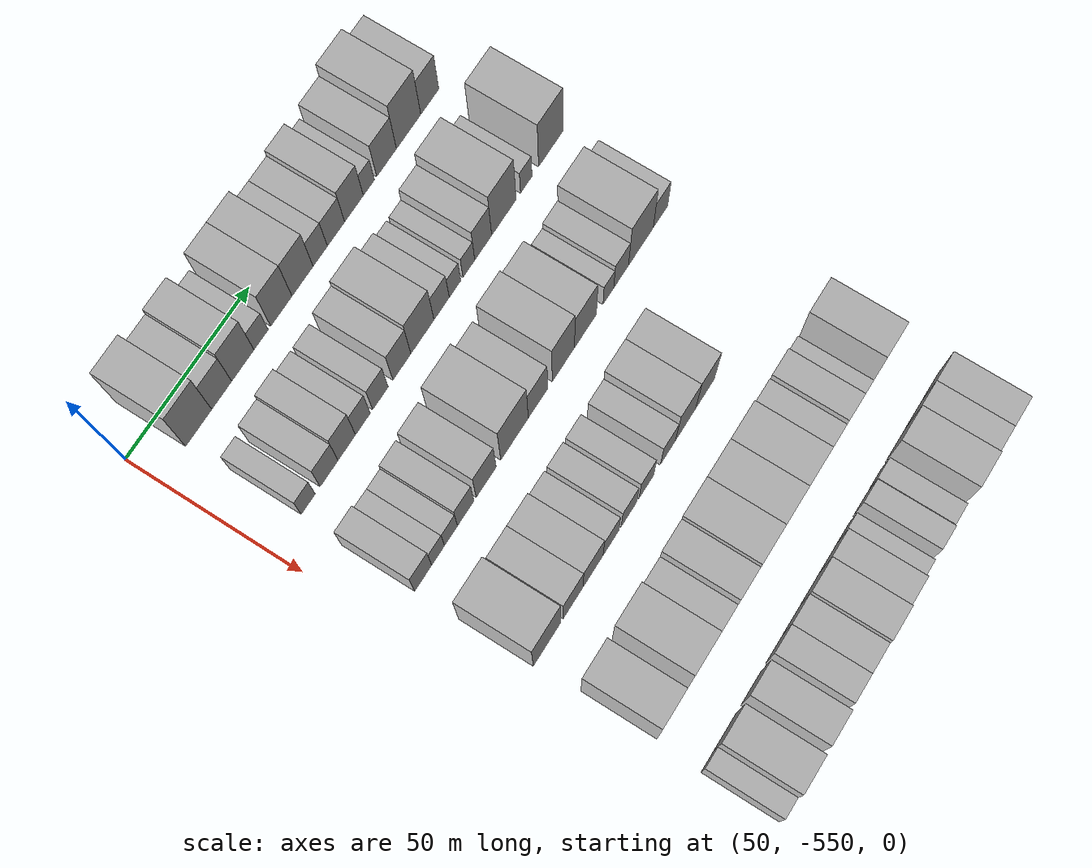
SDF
<sdf version="1.6">
 <world name="default">
  <model name="building_1">
   <static>1</static>
   <pose>50.0000 -534.7158 0 0.000000 0.000000 0.000000</pose>
   <link name="link">
    <pose>0 0 12.00 0 0 0</pose>
    <collision name="collision"><geometry><box><size>20.0000 10.5683 24.0000</size></box></geometry></collision>
    <visual name="visual">
     <cast_shadows>0</cast_shadows>
     <geometry><box><size>20.0000 10.5683 24.0000</size></box></geometry>
     <material>
      <script>
       <uri>model://HANNAS_wall/materials/scripts</uri>
       <uri>model://HANNAS_wall/materials/textures</uri>
       <name>vrc/HANNAS_wall</name>
      </script>
     </material>
    </visual>
   </link>
  </model>
  <model name="building_2">
   <static>1</static>
   <pose>50.0000 -525.3660 0 0.000000 0.000000 0.000000</pose>
   <link name="link">
    <pose>0 0 9.00 0 0 0</pose>
    <collision name="collision"><geometry><box><size>20.0000 8.1313 18.0000</size></box></geometry></collision>
    <visual name="visual">
     <cast_shadows>0</cast_shadows>
     <geometry><box><size>20.0000 8.1313 18.0000</size></box></geometry>
     <material>
      <script>
       <uri>model://HANNAS_wall/materials/scripts</uri>
       <uri>model://HANNAS_wall/materials/textures</uri>
       <name>vrc/HANNAS_wall</name>
      </script>
     </material>
    </visual>
   </link>
  </model>
  <model name="building_3">
   <static>1</static>
   <pose>50.0000 -516.7216 0 0.000000 0.000000 0.000000</pose>
   <link name="link">
    <pose>0 0 10.50 0 0 0</pose>
    <collision name="collision"><geometry><box><size>20.0000 9.1576 21.0000</size></box></geometry></collision>
    <visual name="visual">
     <cast_shadows>0</cast_shadows>
     <geometry><box><size>20.0000 9.1576 21.0000</size></box></geometry>
     <material>
      <script>
       <uri>model://HANNAS_wall/materials/scripts</uri>
       <uri>model://HANNAS_wall/materials/textures</uri>
       <name>vrc/HANNAS_wall</name>
      </script>
     </material>
    </visual>
   </link>
  </model>
  <model name="building_4">
   <static>1</static>
   <pose>50.0000 -509.1825 0 0.000000 0.000000 0.000000</pose>
   <link name="link">
    <pose>0 0 6.00 0 0 0</pose>
    <collision name="collision"><geometry><box><size>20.0000 5.9204 12.0000</size></box></geometry></collision>
    <visual name="visual">
     <cast_shadows>0</cast_shadows>
     <geometry><box><size>20.0000 5.9204 12.0000</size></box></geometry>
     <material>
      <script>
       <uri>model://HANNAS_wall/materials/scripts</uri>
       <uri>model://HANNAS_wall/materials/textures</uri>
       <name>vrc/HANNAS_wall</name>
      </script>
     </material>
    </visual>
   </link>
  </model>
  <model name="building_5">
   <static>1</static>
   <pose>50.0000 -500.7630 0 0.000000 0.000000 0.000000</pose>
   <link name="link">
    <pose>0 0 10.50 0 0 0</pose>
    <collision name="collision"><geometry><box><size>20.0000 8.9187 21.0000</size></box></geometry></collision>
    <visual name="visual">
     <cast_shadows>0</cast_shadows>
     <geometry><box><size>20.0000 8.9187 21.0000</size></box></geometry>
     <material>
      <script>
       <uri>model://HANNAS_wall/materials/scripts</uri>
       <uri>model://HANNAS_wall/materials/textures</uri>
       <name>vrc/HANNAS_wall</name>
      </script>
     </material>
    </visual>
   </link>
  </model>
  <model name="building_6">
   <static>1</static>
   <pose>50.0000 -491.8383 0 0.000000 0.000000 0.000000</pose>
   <link name="link">
    <pose>0 0 10.50 0 0 0</pose>
    <collision name="collision"><geometry><box><size>20.0000 8.9307 21.0000</size></box></geometry></collision>
    <visual name="visual">
     <cast_shadows>0</cast_shadows>
     <geometry><box><size>20.0000 8.9307 21.0000</size></box></geometry>
     <material>
      <script>
       <uri>model://HANNAS_wall/materials/scripts</uri>
       <uri>model://HANNAS_wall/materials/textures</uri>
       <name>vrc/HANNAS_wall</name>
      </script>
     </material>
    </visual>
   </link>
  </model>
  <model name="building_7">
   <static>1</static>
   <pose>50.0000 -484.3149 0 0.000000 0.000000 0.000000</pose>
   <link name="link">
    <pose>0 0 7.50 0 0 0</pose>
    <collision name="collision"><geometry><box><size>20.0000 6.1162 15.0000</size></box></geometry></collision>
    <visual name="visual">
     <cast_shadows>0</cast_shadows>
     <geometry><box><size>20.0000 6.1162 15.0000</size></box></geometry>
     <material>
      <script>
       <uri>model://HANNAS_wall/materials/scripts</uri>
       <uri>model://HANNAS_wall/materials/textures</uri>
       <name>vrc/HANNAS_wall</name>
      </script>
     </material>
    </visual>
   </link>
  </model>
  <model name="building_8">
   <static>1</static>
   <pose>50.0000 -477.5582 0 0.000000 0.000000 0.000000</pose>
   <link name="link">
    <pose>0 0 7.50 0 0 0</pose>
    <collision name="collision"><geometry><box><size>20.0000 7.3971 15.0000</size></box></geometry></collision>
    <visual name="visual">
     <cast_shadows>0</cast_shadows>
     <geometry><box><size>20.0000 7.3971 15.0000</size></box></geometry>
     <material>
      <script>
       <uri>model://HANNAS_wall/materials/scripts</uri>
       <uri>model://HANNAS_wall/materials/textures</uri>
       <name>vrc/HANNAS_wall</name>
      </script>
     </material>
    </visual>
   </link>
  </model>
  <model name="building_9">
   <static>1</static>
   <pose>50.0000 -469.8206 0 0.000000 0.000000 0.000000</pose>
   <link name="link">
    <pose>0 0 9.00 0 0 0</pose>
    <collision name="collision"><geometry><box><size>20.0000 8.0781 18.0000</size></box></geometry></collision>
    <visual name="visual">
     <cast_shadows>0</cast_shadows>
     <geometry><box><size>20.0000 8.0781 18.0000</size></box></geometry>
     <material>
      <script>
       <uri>model://HANNAS_wall/materials/scripts</uri>
       <uri>model://HANNAS_wall/materials/textures</uri>
       <name>vrc/HANNAS_wall</name>
      </script>
     </material>
    </visual>
   </link>
  </model>
  <model name="building_10">
   <static>1</static>
   <pose>50.0000 -463.3755 0 0.000000 0.000000 0.000000</pose>
   <link name="link">
    <pose>0 0 6.00 0 0 0</pose>
    <collision name="collision"><geometry><box><size>20.0000 4.8121 12.0000</size></box></geometry></collision>
    <visual name="visual">
     <cast_shadows>0</cast_shadows>
     <geometry><box><size>20.0000 4.8121 12.0000</size></box></geometry>
     <material>
      <script>
       <uri>model://HANNAS_wall/materials/scripts</uri>
       <uri>model://HANNAS_wall/materials/textures</uri>
       <name>vrc/HANNAS_wall</name>
      </script>
     </material>
    </visual>
   </link>
  </model>
  <model name="building_11">
   <static>1</static>
   <pose>50.0000 -455.6227 0 0.000000 0.000000 0.000000</pose>
   <link name="link">
    <pose>0 0 9.00 0 0 0</pose>
    <collision name="collision"><geometry><box><size>20.0000 8.6935 18.0000</size></box></geometry></collision>
    <visual name="visual">
     <cast_shadows>0</cast_shadows>
     <geometry><box><size>20.0000 8.6935 18.0000</size></box></geometry>
     <material>
      <script>
       <uri>model://HANNAS_wall/materials/scripts</uri>
       <uri>model://HANNAS_wall/materials/textures</uri>
       <name>vrc/HANNAS_wall</name>
      </script>
     </material>
    </visual>
   </link>
  </model>
  <model name="building_12">
   <static>1</static>
   <pose>50.0000 -445.8741 0 0.000000 0.000000 0.000000</pose>
   <link name="link">
    <pose>0 0 12.00 0 0 0</pose>
    <collision name="collision"><geometry><box><size>20.0000 10.8036 24.0000</size></box></geometry></collision>
    <visual name="visual">
     <cast_shadows>0</cast_shadows>
     <geometry><box><size>20.0000 10.8036 24.0000</size></box></geometry>
     <material>
      <script>
       <uri>model://HANNAS_wall/materials/scripts</uri>
       <uri>model://HANNAS_wall/materials/textures</uri>
       <name>vrc/HANNAS_wall</name>
      </script>
     </material>
    </visual>
   </link>
  </model>
  <model name="building_13">
   <static>1</static>
   <pose>50.0000 -436.4379 0 0.000000 0.000000 0.000000</pose>
   <link name="link">
    <pose>0 0 9.00 0 0 0</pose>
    <collision name="collision"><geometry><box><size>20.0000 8.0688 18.0000</size></box></geometry></collision>
    <visual name="visual">
     <cast_shadows>0</cast_shadows>
     <geometry><box><size>20.0000 8.0688 18.0000</size></box></geometry>
     <material>
      <script>
       <uri>model://HANNAS_wall/materials/scripts</uri>
       <uri>model://HANNAS_wall/materials/textures</uri>
       <name>vrc/HANNAS_wall</name>
      </script>
     </material>
    </visual>
   </link>
  </model>
  <model name="building_119">
   <static>1</static>
   <pose>82.0000 -536.1386 0 0.000000 0.000000 0.000000</pose>
   <link name="link">
    <pose>0 0 6.00 0 0 0</pose>
    <collision name="collision"><geometry><box><size>20.0000 5.7229 12.0000</size></box></geometry></collision>
    <visual name="visual">
     <cast_shadows>0</cast_shadows>
     <geometry><box><size>20.0000 5.7229 12.0000</size></box></geometry>
     <material>
      <script>
       <uri>model://HANNAS_wall/materials/scripts</uri>
       <uri>model://HANNAS_wall/materials/textures</uri>
       <name>vrc/HANNAS_wall</name>
      </script>
     </material>
    </visual>
   </link>
  </model>
  <model name="building_120">
   <static>1</static>
   <pose>82.0000 -527.5840 0 0.000000 0.000000 0.000000</pose>
   <link name="link">
    <pose>0 0 7.50 0 0 0</pose>
    <collision name="collision"><geometry><box><size>20.0000 7.3862 15.0000</size></box></geometry></collision>
    <visual name="visual">
     <cast_shadows>0</cast_shadows>
     <geometry><box><size>20.0000 7.3862 15.0000</size></box></geometry>
     <material>
      <script>
       <uri>model://HANNAS_wall/materials/scripts</uri>
       <uri>model://HANNAS_wall/materials/textures</uri>
       <name>vrc/HANNAS_wall</name>
      </script>
     </material>
    </visual>
   </link>
  </model>
  <model name="building_121">
   <static>1</static>
   <pose>82.0000 -520.2640 0 0.000000 0.000000 0.000000</pose>
   <link name="link">
    <pose>0 0 9.00 0 0 0</pose>
    <collision name="collision"><geometry><box><size>20.0000 7.2538 18.0000</size></box></geometry></collision>
    <visual name="visual">
     <cast_shadows>0</cast_shadows>
     <geometry><box><size>20.0000 7.2538 18.0000</size></box></geometry>
     <material>
      <script>
       <uri>model://HANNAS_wall/materials/scripts</uri>
       <uri>model://HANNAS_wall/materials/textures</uri>
       <name>vrc/HANNAS_wall</name>
      </script>
     </material>
    </visual>
   </link>
  </model>
  <model name="building_122">
   <static>1</static>
   <pose>82.0000 -513.5412 0 0.000000 0.000000 0.000000</pose>
   <link name="link">
    <pose>0 0 7.50 0 0 0</pose>
    <collision name="collision"><geometry><box><size>20.0000 6.1918 15.0000</size></box></geometry></collision>
    <visual name="visual">
     <cast_shadows>0</cast_shadows>
     <geometry><box><size>20.0000 6.1918 15.0000</size></box></geometry>
     <material>
      <script>
       <uri>model://HANNAS_wall/materials/scripts</uri>
       <uri>model://HANNAS_wall/materials/textures</uri>
       <name>vrc/HANNAS_wall</name>
      </script>
     </material>
    </visual>
   </link>
  </model>
  <model name="building_123">
   <static>1</static>
   <pose>82.0000 -506.1625 0 0.000000 0.000000 0.000000</pose>
   <link name="link">
    <pose>0 0 7.50 0 0 0</pose>
    <collision name="collision"><geometry><box><size>20.0000 6.5655 15.0000</size></box></geometry></collision>
    <visual name="visual">
     <cast_shadows>0</cast_shadows>
     <geometry><box><size>20.0000 6.5655 15.0000</size></box></geometry>
     <material>
      <script>
       <uri>model://HANNAS_wall/materials/scripts</uri>
       <uri>model://HANNAS_wall/materials/textures</uri>
       <name>vrc/HANNAS_wall</name>
      </script>
     </material>
    </visual>
   </link>
  </model>
  <model name="building_124">
   <static>1</static>
   <pose>82.0000 -497.0468 0 0.000000 0.000000 0.000000</pose>
   <link name="link">
    <pose>0 0 9.00 0 0 0</pose>
    <collision name="collision"><geometry><box><size>20.0000 7.6659 18.0000</size></box></geometry></collision>
    <visual name="visual">
     <cast_shadows>0</cast_shadows>
     <geometry><box><size>20.0000 7.6659 18.0000</size></box></geometry>
     <material>
      <script>
       <uri>model://HANNAS_wall/materials/scripts</uri>
       <uri>model://HANNAS_wall/materials/textures</uri>
       <name>vrc/HANNAS_wall</name>
      </script>
     </material>
    </visual>
   </link>
  </model>
  <model name="building_125">
   <static>1</static>
   <pose>82.0000 -488.2323 0 0.000000 0.000000 0.000000</pose>
   <link name="link">
    <pose>0 0 10.50 0 0 0</pose>
    <collision name="collision"><geometry><box><size>20.0000 9.9631 21.0000</size></box></geometry></collision>
    <visual name="visual">
     <cast_shadows>0</cast_shadows>
     <geometry><box><size>20.0000 9.9631 21.0000</size></box></geometry>
     <material>
      <script>
       <uri>model://HANNAS_wall/materials/scripts</uri>
       <uri>model://HANNAS_wall/materials/textures</uri>
       <name>vrc/HANNAS_wall</name>
      </script>
     </material>
    </visual>
   </link>
  </model>
  <model name="building_126">
   <static>1</static>
   <pose>82.0000 -479.9297 0 0.000000 0.000000 0.000000</pose>
   <link name="link">
    <pose>0 0 7.50 0 0 0</pose>
    <collision name="collision"><geometry><box><size>20.0000 6.6422 15.0000</size></box></geometry></collision>
    <visual name="visual">
     <cast_shadows>0</cast_shadows>
     <geometry><box><size>20.0000 6.6422 15.0000</size></box></geometry>
     <material>
      <script>
       <uri>model://HANNAS_wall/materials/scripts</uri>
       <uri>model://HANNAS_wall/materials/textures</uri>
       <name>vrc/HANNAS_wall</name>
      </script>
     </material>
    </visual>
   </link>
  </model>
  <model name="building_127">
   <static>1</static>
   <pose>82.0000 -474.0983 0 0.000000 0.000000 0.000000</pose>
   <link name="link">
    <pose>0 0 6.00 0 0 0</pose>
    <collision name="collision"><geometry><box><size>20.0000 5.0206 12.0000</size></box></geometry></collision>
    <visual name="visual">
     <cast_shadows>0</cast_shadows>
     <geometry><box><size>20.0000 5.0206 12.0000</size></box></geometry>
     <material>
      <script>
       <uri>model://HANNAS_wall/materials/scripts</uri>
       <uri>model://HANNAS_wall/materials/textures</uri>
       <name>vrc/HANNAS_wall</name>
      </script>
     </material>
    </visual>
   </link>
  </model>
  <model name="building_128">
   <static>1</static>
   <pose>82.0000 -467.9950 0 0.000000 0.000000 0.000000</pose>
   <link name="link">
    <pose>0 0 6.00 0 0 0</pose>
    <collision name="collision"><geometry><box><size>20.0000 5.1860 12.0000</size></box></geometry></collision>
    <visual name="visual">
     <cast_shadows>0</cast_shadows>
     <geometry><box><size>20.0000 5.1860 12.0000</size></box></geometry>
     <material>
      <script>
       <uri>model://HANNAS_wall/materials/scripts</uri>
       <uri>model://HANNAS_wall/materials/textures</uri>
       <name>vrc/HANNAS_wall</name>
      </script>
     </material>
    </visual>
   </link>
  </model>
  <model name="building_129">
   <static>1</static>
   <pose>82.0000 -461.6492 0 0.000000 0.000000 0.000000</pose>
   <link name="link">
    <pose>0 0 9.00 0 0 0</pose>
    <collision name="collision"><geometry><box><size>20.0000 7.5056 18.0000</size></box></geometry></collision>
    <visual name="visual">
     <cast_shadows>0</cast_shadows>
     <geometry><box><size>20.0000 7.5056 18.0000</size></box></geometry>
     <material>
      <script>
       <uri>model://HANNAS_wall/materials/scripts</uri>
       <uri>model://HANNAS_wall/materials/textures</uri>
       <name>vrc/HANNAS_wall</name>
      </script>
     </material>
    </visual>
   </link>
  </model>
  <model name="building_130">
   <static>1</static>
   <pose>82.0000 -452.4360 0 0.000000 0.000000 0.000000</pose>
   <link name="link">
    <pose>0 0 12.00 0 0 0</pose>
    <collision name="collision"><geometry><box><size>20.0000 10.9207 24.0000</size></box></geometry></collision>
    <visual name="visual">
     <cast_shadows>0</cast_shadows>
     <geometry><box><size>20.0000 10.9207 24.0000</size></box></geometry>
     <material>
      <script>
       <uri>model://HANNAS_wall/materials/scripts</uri>
       <uri>model://HANNAS_wall/materials/textures</uri>
       <name>vrc/HANNAS_wall</name>
      </script>
     </material>
    </visual>
   </link>
  </model>
  <model name="building_131">
   <static>1</static>
   <pose>82.0000 -442.3716 0 0.000000 0.000000 0.000000</pose>
   <link name="link">
    <pose>0 0 6.00 0 0 0</pose>
    <collision name="collision"><geometry><box><size>20.0000 5.2080 12.0000</size></box></geometry></collision>
    <visual name="visual">
     <cast_shadows>0</cast_shadows>
     <geometry><box><size>20.0000 5.2080 12.0000</size></box></geometry>
     <material>
      <script>
       <uri>model://HANNAS_wall/materials/scripts</uri>
       <uri>model://HANNAS_wall/materials/textures</uri>
       <name>vrc/HANNAS_wall</name>
      </script>
     </material>
    </visual>
   </link>
  </model>
  <model name="building_132">
   <static>1</static>
   <pose>82.0000 -431.2203 0 0.000000 0.000000 0.000000</pose>
   <link name="link">
    <pose>0 0 12.00 0 0 0</pose>
    <collision name="collision"><geometry><box><size>20.0000 11.0946 24.0000</size></box></geometry></collision>
    <visual name="visual">
     <cast_shadows>0</cast_shadows>
     <geometry><box><size>20.0000 11.0946 24.0000</size></box></geometry>
     <material>
      <script>
       <uri>model://HANNAS_wall/materials/scripts</uri>
       <uri>model://HANNAS_wall/materials/textures</uri>
       <name>vrc/HANNAS_wall</name>
      </script>
     </material>
    </visual>
   </link>
  </model>
  <model name="building_241">
   <static>1</static>
   <pose>114.0000 -536.4571 0 0.000000 0.000000 0.000000</pose>
   <link name="link">
    <pose>0 0 7.50 0 0 0</pose>
    <collision name="collision"><geometry><box><size>20.0000 7.0859 15.0000</size></box></geometry></collision>
    <visual name="visual">
     <cast_shadows>0</cast_shadows>
     <geometry><box><size>20.0000 7.0859 15.0000</size></box></geometry>
     <material>
      <script>
       <uri>model://HANNAS_wall/materials/scripts</uri>
       <uri>model://HANNAS_wall/materials/textures</uri>
       <name>vrc/HANNAS_wall</name>
      </script>
     </material>
    </visual>
   </link>
  </model>
  <model name="building_242">
   <static>1</static>
   <pose>114.0000 -530.2501 0 0.000000 0.000000 0.000000</pose>
   <link name="link">
    <pose>0 0 6.00 0 0 0</pose>
    <collision name="collision"><geometry><box><size>20.0000 5.3279 12.0000</size></box></geometry></collision>
    <visual name="visual">
     <cast_shadows>0</cast_shadows>
     <geometry><box><size>20.0000 5.3279 12.0000</size></box></geometry>
     <material>
      <script>
       <uri>model://HANNAS_wall/materials/scripts</uri>
       <uri>model://HANNAS_wall/materials/textures</uri>
       <name>vrc/HANNAS_wall</name>
      </script>
     </material>
    </visual>
   </link>
  </model>
  <model name="building_243">
   <static>1</static>
   <pose>114.0000 -524.8411 0 0.000000 0.000000 0.000000</pose>
   <link name="link">
    <pose>0 0 6.00 0 0 0</pose>
    <collision name="collision"><geometry><box><size>20.0000 5.4901 12.0000</size></box></geometry></collision>
    <visual name="visual">
     <cast_shadows>0</cast_shadows>
     <geometry><box><size>20.0000 5.4901 12.0000</size></box></geometry>
     <material>
      <script>
       <uri>model://HANNAS_wall/materials/scripts</uri>
       <uri>model://HANNAS_wall/materials/textures</uri>
       <name>vrc/HANNAS_wall</name>
      </script>
     </material>
    </visual>
   </link>
  </model>
  <model name="building_244">
   <static>1</static>
   <pose>114.0000 -518.6433 0 0.000000 0.000000 0.000000</pose>
   <link name="link">
    <pose>0 0 7.50 0 0 0</pose>
    <collision name="collision"><geometry><box><size>20.0000 6.9056 15.0000</size></box></geometry></collision>
    <visual name="visual">
     <cast_shadows>0</cast_shadows>
     <geometry><box><size>20.0000 6.9056 15.0000</size></box></geometry>
     <material>
      <script>
       <uri>model://HANNAS_wall/materials/scripts</uri>
       <uri>model://HANNAS_wall/materials/textures</uri>
       <name>vrc/HANNAS_wall</name>
      </script>
     </material>
    </visual>
   </link>
  </model>
  <model name="building_245">
   <static>1</static>
   <pose>114.0000 -509.9330 0 0.000000 0.000000 0.000000</pose>
   <link name="link">
    <pose>0 0 9.00 0 0 0</pose>
    <collision name="collision"><geometry><box><size>20.0000 8.5151 18.0000</size></box></geometry></collision>
    <visual name="visual">
     <cast_shadows>0</cast_shadows>
     <geometry><box><size>20.0000 8.5151 18.0000</size></box></geometry>
     <material>
      <script>
       <uri>model://HANNAS_wall/materials/scripts</uri>
       <uri>model://HANNAS_wall/materials/textures</uri>
       <name>vrc/HANNAS_wall</name>
      </script>
     </material>
    </visual>
   </link>
  </model>
  <model name="building_246">
   <static>1</static>
   <pose>114.0000 -497.7159 0 0.000000 0.000000 0.000000</pose>
   <link name="link">
    <pose>0 0 12.00 0 0 0</pose>
    <collision name="collision"><geometry><box><size>20.0000 11.9190 24.0000</size></box></geometry></collision>
    <visual name="visual">
     <cast_shadows>0</cast_shadows>
     <geometry><box><size>20.0000 11.9190 24.0000</size></box></geometry>
     <material>
      <script>
       <uri>model://HANNAS_wall/materials/scripts</uri>
       <uri>model://HANNAS_wall/materials/textures</uri>
       <name>vrc/HANNAS_wall</name>
      </script>
     </material>
    </visual>
   </link>
  </model>
  <model name="building_247">
   <static>1</static>
   <pose>114.0000 -487.5026 0 0.000000 0.000000 0.000000</pose>
   <link name="link">
    <pose>0 0 9.00 0 0 0</pose>
    <collision name="collision"><geometry><box><size>20.0000 8.5075 18.0000</size></box></geometry></collision>
    <visual name="visual">
     <cast_shadows>0</cast_shadows>
     <geometry><box><size>20.0000 8.5075 18.0000</size></box></geometry>
     <material>
      <script>
       <uri>model://HANNAS_wall/materials/scripts</uri>
       <uri>model://HANNAS_wall/materials/textures</uri>
       <name>vrc/HANNAS_wall</name>
      </script>
     </material>
    </visual>
   </link>
  </model>
  <model name="building_248">
   <static>1</static>
   <pose>114.0000 -476.3094 0 0.000000 0.000000 0.000000</pose>
   <link name="link">
    <pose>0 0 12.00 0 0 0</pose>
    <collision name="collision"><geometry><box><size>20.0000 9.8789 24.0000</size></box></geometry></collision>
    <visual name="visual">
     <cast_shadows>0</cast_shadows>
     <geometry><box><size>20.0000 9.8789 24.0000</size></box></geometry>
     <material>
      <script>
       <uri>model://HANNAS_wall/materials/scripts</uri>
       <uri>model://HANNAS_wall/materials/textures</uri>
       <name>vrc/HANNAS_wall</name>
      </script>
     </material>
    </visual>
   </link>
  </model>
  <model name="building_249">
   <static>1</static>
   <pose>114.0000 -466.4725 0 0.000000 0.000000 0.000000</pose>
   <link name="link">
    <pose>0 0 10.50 0 0 0</pose>
    <collision name="collision"><geometry><box><size>20.0000 9.7950 21.0000</size></box></geometry></collision>
    <visual name="visual">
     <cast_shadows>0</cast_shadows>
     <geometry><box><size>20.0000 9.7950 21.0000</size></box></geometry>
     <material>
      <script>
       <uri>model://HANNAS_wall/materials/scripts</uri>
       <uri>model://HANNAS_wall/materials/textures</uri>
       <name>vrc/HANNAS_wall</name>
      </script>
     </material>
    </visual>
   </link>
  </model>
  <model name="building_250">
   <static>1</static>
   <pose>114.0000 -456.1477 0 0.000000 0.000000 0.000000</pose>
   <link name="link">
    <pose>0 0 6.00 0 0 0</pose>
    <collision name="collision"><geometry><box><size>20.0000 4.8547 12.0000</size></box></geometry></collision>
    <visual name="visual">
     <cast_shadows>0</cast_shadows>
     <geometry><box><size>20.0000 4.8547 12.0000</size></box></geometry>
     <material>
      <script>
       <uri>model://HANNAS_wall/materials/scripts</uri>
       <uri>model://HANNAS_wall/materials/textures</uri>
       <name>vrc/HANNAS_wall</name>
      </script>
     </material>
    </visual>
   </link>
  </model>
  <model name="building_251">
   <static>1</static>
   <pose>114.0000 -450.3418 0 0.000000 0.000000 0.000000</pose>
   <link name="link">
    <pose>0 0 7.50 0 0 0</pose>
    <collision name="collision"><geometry><box><size>20.0000 6.7571 15.0000</size></box></geometry></collision>
    <visual name="visual">
     <cast_shadows>0</cast_shadows>
     <geometry><box><size>20.0000 6.7571 15.0000</size></box></geometry>
     <material>
      <script>
       <uri>model://HANNAS_wall/materials/scripts</uri>
       <uri>model://HANNAS_wall/materials/textures</uri>
       <name>vrc/HANNAS_wall</name>
      </script>
     </material>
    </visual>
   </link>
  </model>
  <model name="building_252">
   <static>1</static>
   <pose>114.0000 -441.2493 0 0.000000 0.000000 0.000000</pose>
   <link name="link">
    <pose>0 0 12.00 0 0 0</pose>
    <collision name="collision"><geometry><box><size>20.0000 11.4278 24.0000</size></box></geometry></collision>
    <visual name="visual">
     <cast_shadows>0</cast_shadows>
     <geometry><box><size>20.0000 11.4278 24.0000</size></box></geometry>
     <material>
      <script>
       <uri>model://HANNAS_wall/materials/scripts</uri>
       <uri>model://HANNAS_wall/materials/textures</uri>
       <name>vrc/HANNAS_wall</name>
      </script>
     </material>
    </visual>
   </link>
  </model>
  <model name="building_253">
   <static>1</static>
   <pose>114.0000 -432.1945 0 0.000000 0.000000 0.000000</pose>
   <link name="link">
    <pose>0 0 7.50 0 0 0</pose>
    <collision name="collision"><geometry><box><size>20.0000 6.6818 15.0000</size></box></geometry></collision>
    <visual name="visual">
     <cast_shadows>0</cast_shadows>
     <geometry><box><size>20.0000 6.6818 15.0000</size></box></geometry>
     <material>
      <script>
       <uri>model://HANNAS_wall/materials/scripts</uri>
       <uri>model://HANNAS_wall/materials/textures</uri>
       <name>vrc/HANNAS_wall</name>
      </script>
     </material>
    </visual>
   </link>
  </model>
  <model name="building_365">
   <static>1</static>
   <pose>146.0000 -534.1707 0 0.000000 0.000000 0.000000</pose>
   <link name="link">
    <pose>0 0 12.00 0 0 0</pose>
    <collision name="collision"><geometry><box><size>20.0000 11.6585 24.0000</size></box></geometry></collision>
    <visual name="visual">
     <cast_shadows>0</cast_shadows>
     <geometry><box><size>20.0000 11.6585 24.0000</size></box></geometry>
     <material>
      <script>
       <uri>model://HANNAS_wall/materials/scripts</uri>
       <uri>model://HANNAS_wall/materials/textures</uri>
       <name>vrc/HANNAS_wall</name>
      </script>
     </material>
    </visual>
   </link>
  </model>
  <model name="building_366">
   <static>1</static>
   <pose>146.0000 -523.0991 0 0.000000 0.000000 0.000000</pose>
   <link name="link">
    <pose>0 0 9.00 0 0 0</pose>
    <collision name="collision"><geometry><box><size>20.0000 8.4848 18.0000</size></box></geometry></collision>
    <visual name="visual">
     <cast_shadows>0</cast_shadows>
     <geometry><box><size>20.0000 8.4848 18.0000</size></box></geometry>
     <material>
      <script>
       <uri>model://HANNAS_wall/materials/scripts</uri>
       <uri>model://HANNAS_wall/materials/textures</uri>
       <name>vrc/HANNAS_wall</name>
      </script>
     </material>
    </visual>
   </link>
  </model>
  <model name="building_367">
   <static>1</static>
   <pose>146.0000 -514.5302 0 0.000000 0.000000 0.000000</pose>
   <link name="link">
    <pose>0 0 9.00 0 0 0</pose>
    <collision name="collision"><geometry><box><size>20.0000 8.6531 18.0000</size></box></geometry></collision>
    <visual name="visual">
     <cast_shadows>0</cast_shadows>
     <geometry><box><size>20.0000 8.6531 18.0000</size></box></geometry>
     <material>
      <script>
       <uri>model://HANNAS_wall/materials/scripts</uri>
       <uri>model://HANNAS_wall/materials/textures</uri>
       <name>vrc/HANNAS_wall</name>
      </script>
     </material>
    </visual>
   </link>
  </model>
  <model name="building_368">
   <static>1</static>
   <pose>146.0000 -506.7891 0 0.000000 0.000000 0.000000</pose>
   <link name="link">
    <pose>0 0 7.50 0 0 0</pose>
    <collision name="collision"><geometry><box><size>20.0000 6.8290 15.0000</size></box></geometry></collision>
    <visual name="visual">
     <cast_shadows>0</cast_shadows>
     <geometry><box><size>20.0000 6.8290 15.0000</size></box></geometry>
     <material>
      <script>
       <uri>model://HANNAS_wall/materials/scripts</uri>
       <uri>model://HANNAS_wall/materials/textures</uri>
       <name>vrc/HANNAS_wall</name>
      </script>
     </material>
    </visual>
   </link>
  </model>
  <model name="building_369">
   <static>1</static>
   <pose>146.0000 -498.9618 0 0.000000 0.000000 0.000000</pose>
   <link name="link">
    <pose>0 0 7.50 0 0 0</pose>
    <collision name="collision"><geometry><box><size>20.0000 6.8257 15.0000</size></box></geometry></collision>
    <visual name="visual">
     <cast_shadows>0</cast_shadows>
     <geometry><box><size>20.0000 6.8257 15.0000</size></box></geometry>
     <material>
      <script>
       <uri>model://HANNAS_wall/materials/scripts</uri>
       <uri>model://HANNAS_wall/materials/textures</uri>
       <name>vrc/HANNAS_wall</name>
      </script>
     </material>
    </visual>
   </link>
  </model>
  <model name="building_370">
   <static>1</static>
   <pose>146.0000 -491.2418 0 0.000000 0.000000 0.000000</pose>
   <link name="link">
    <pose>0 0 7.50 0 0 0</pose>
    <collision name="collision"><geometry><box><size>20.0000 6.6142 15.0000</size></box></geometry></collision>
    <visual name="visual">
     <cast_shadows>0</cast_shadows>
     <geometry><box><size>20.0000 6.6142 15.0000</size></box></geometry>
     <material>
      <script>
       <uri>model://HANNAS_wall/materials/scripts</uri>
       <uri>model://HANNAS_wall/materials/textures</uri>
       <name>vrc/HANNAS_wall</name>
      </script>
     </material>
    </visual>
   </link>
  </model>
  <model name="building_371">
   <static>1</static>
   <pose>146.0000 -481.5346 0 0.000000 0.000000 0.000000</pose>
   <link name="link">
    <pose>0 0 7.50 0 0 0</pose>
    <collision name="collision"><geometry><box><size>20.0000 6.8001 15.0000</size></box></geometry></collision>
    <visual name="visual">
     <cast_shadows>0</cast_shadows>
     <geometry><box><size>20.0000 6.8001 15.0000</size></box></geometry>
     <material>
      <script>
       <uri>model://HANNAS_wall/materials/scripts</uri>
       <uri>model://HANNAS_wall/materials/textures</uri>
       <name>vrc/HANNAS_wall</name>
      </script>
     </material>
    </visual>
   </link>
  </model>
  <model name="building_372">
   <static>1</static>
   <pose>146.0000 -473.6203 0 0.000000 0.000000 0.000000</pose>
   <link name="link">
    <pose>0 0 10.50 0 0 0</pose>
    <collision name="collision"><geometry><box><size>20.0000 9.0285 21.0000</size></box></geometry></collision>
    <visual name="visual">
     <cast_shadows>0</cast_shadows>
     <geometry><box><size>20.0000 9.0285 21.0000</size></box></geometry>
     <material>
      <script>
       <uri>model://HANNAS_wall/materials/scripts</uri>
       <uri>model://HANNAS_wall/materials/textures</uri>
       <name>vrc/HANNAS_wall</name>
      </script>
     </material>
    </visual>
   </link>
  </model>
  <model name="building_373">
   <static>1</static>
   <pose>146.0000 -464.8048 0 0.000000 0.000000 0.000000</pose>
   <link name="link">
    <pose>0 0 10.50 0 0 0</pose>
    <collision name="collision"><geometry><box><size>20.0000 8.6025 21.0000</size></box></geometry></collision>
    <visual name="visual">
     <cast_shadows>0</cast_shadows>
     <geometry><box><size>20.0000 8.6025 21.0000</size></box></geometry>
     <material>
      <script>
       <uri>model://HANNAS_wall/materials/scripts</uri>
       <uri>model://HANNAS_wall/materials/textures</uri>
       <name>vrc/HANNAS_wall</name>
      </script>
     </material>
    </visual>
   </link>
  </model>
  <model name="building_482">
   <static>1</static>
   <pose>178.0000 -533.8869 0 0.000000 0.000000 0.000000</pose>
   <link name="link">
    <pose>0 0 12.00 0 0 0</pose>
    <collision name="collision"><geometry><box><size>20.0000 10.2262 24.0000</size></box></geometry></collision>
    <visual name="visual">
     <cast_shadows>0</cast_shadows>
     <geometry><box><size>20.0000 10.2262 24.0000</size></box></geometry>
     <material>
      <script>
       <uri>model://HANNAS_wall/materials/scripts</uri>
       <uri>model://HANNAS_wall/materials/textures</uri>
       <name>vrc/HANNAS_wall</name>
      </script>
     </material>
    </visual>
   </link>
  </model>
  <model name="building_483">
   <static>1</static>
   <pose>178.0000 -520.2036 0 0.000000 0.000000 0.000000</pose>
   <link name="link">
    <pose>0 0 12.00 0 0 0</pose>
    <collision name="collision"><geometry><box><size>20.0000 11.1404 24.0000</size></box></geometry></collision>
    <visual name="visual">
     <cast_shadows>0</cast_shadows>
     <geometry><box><size>20.0000 11.1404 24.0000</size></box></geometry>
     <material>
      <script>
       <uri>model://HANNAS_wall/materials/scripts</uri>
       <uri>model://HANNAS_wall/materials/textures</uri>
       <name>vrc/HANNAS_wall</name>
      </script>
     </material>
    </visual>
   </link>
  </model>
  <model name="building_484">
   <static>1</static>
   <pose>178.0000 -509.9168 0 0.000000 0.000000 0.000000</pose>
   <link name="link">
    <pose>0 0 7.50 0 0 0</pose>
    <collision name="collision"><geometry><box><size>20.0000 7.4332 15.0000</size></box></geometry></collision>
    <visual name="visual">
     <cast_shadows>0</cast_shadows>
     <geometry><box><size>20.0000 7.4332 15.0000</size></box></geometry>
     <material>
      <script>
       <uri>model://HANNAS_wall/materials/scripts</uri>
       <uri>model://HANNAS_wall/materials/textures</uri>
       <name>vrc/HANNAS_wall</name>
      </script>
     </material>
    </visual>
   </link>
  </model>
  <model name="building_485">
   <static>1</static>
   <pose>178.0000 -501.9367 0 0.000000 0.000000 0.000000</pose>
   <link name="link">
    <pose>0 0 10.50 0 0 0</pose>
    <collision name="collision"><geometry><box><size>20.0000 8.5270 21.0000</size></box></geometry></collision>
    <visual name="visual">
     <cast_shadows>0</cast_shadows>
     <geometry><box><size>20.0000 8.5270 21.0000</size></box></geometry>
     <material>
      <script>
       <uri>model://HANNAS_wall/materials/scripts</uri>
       <uri>model://HANNAS_wall/materials/textures</uri>
       <name>vrc/HANNAS_wall</name>
      </script>
     </material>
    </visual>
   </link>
  </model>
  <model name="building_486">
   <static>1</static>
   <pose>178.0000 -492.4865 0 0.000000 0.000000 0.000000</pose>
   <link name="link">
    <pose>0 0 12.00 0 0 0</pose>
    <collision name="collision"><geometry><box><size>20.0000 10.3735 24.0000</size></box></geometry></collision>
    <visual name="visual">
     <cast_shadows>0</cast_shadows>
     <geometry><box><size>20.0000 10.3735 24.0000</size></box></geometry>
     <material>
      <script>
       <uri>model://HANNAS_wall/materials/scripts</uri>
       <uri>model://HANNAS_wall/materials/textures</uri>
       <name>vrc/HANNAS_wall</name>
      </script>
     </material>
    </visual>
   </link>
  </model>
  <model name="building_487">
   <static>1</static>
   <pose>178.0000 -482.2640 0 0.000000 0.000000 0.000000</pose>
   <link name="link">
    <pose>0 0 12.00 0 0 0</pose>
    <collision name="collision"><geometry><box><size>20.0000 10.0715 24.0000</size></box></geometry></collision>
    <visual name="visual">
     <cast_shadows>0</cast_shadows>
     <geometry><box><size>20.0000 10.0715 24.0000</size></box></geometry>
     <material>
      <script>
       <uri>model://HANNAS_wall/materials/scripts</uri>
       <uri>model://HANNAS_wall/materials/textures</uri>
       <name>vrc/HANNAS_wall</name>
      </script>
     </material>
    </visual>
   </link>
  </model>
  <model name="building_488">
   <static>1</static>
   <pose>178.0000 -472.0670 0 0.000000 0.000000 0.000000</pose>
   <link name="link">
    <pose>0 0 12.00 0 0 0</pose>
    <collision name="collision"><geometry><box><size>20.0000 10.3226 24.0000</size></box></geometry></collision>
    <visual name="visual">
     <cast_shadows>0</cast_shadows>
     <geometry><box><size>20.0000 10.3226 24.0000</size></box></geometry>
     <material>
      <script>
       <uri>model://HANNAS_wall/materials/scripts</uri>
       <uri>model://HANNAS_wall/materials/textures</uri>
       <name>vrc/HANNAS_wall</name>
      </script>
     </material>
    </visual>
   </link>
  </model>
  <model name="building_489">
   <static>1</static>
   <pose>178.0000 -462.9193 0 0.000000 0.000000 0.000000</pose>
   <link name="link">
    <pose>0 0 9.00 0 0 0</pose>
    <collision name="collision"><geometry><box><size>20.0000 7.9726 18.0000</size></box></geometry></collision>
    <visual name="visual">
     <cast_shadows>0</cast_shadows>
     <geometry><box><size>20.0000 7.9726 18.0000</size></box></geometry>
     <material>
      <script>
       <uri>model://HANNAS_wall/materials/scripts</uri>
       <uri>model://HANNAS_wall/materials/textures</uri>
       <name>vrc/HANNAS_wall</name>
      </script>
     </material>
    </visual>
   </link>
  </model>
  <model name="building_490">
   <static>1</static>
   <pose>178.0000 -454.2204 0 0.000000 0.000000 0.000000</pose>
   <link name="link">
    <pose>0 0 9.00 0 0 0</pose>
    <collision name="collision"><geometry><box><size>20.0000 7.4252 18.0000</size></box></geometry></collision>
    <visual name="visual">
     <cast_shadows>0</cast_shadows>
     <geometry><box><size>20.0000 7.4252 18.0000</size></box></geometry>
     <material>
      <script>
       <uri>model://HANNAS_wall/materials/scripts</uri>
       <uri>model://HANNAS_wall/materials/textures</uri>
       <name>vrc/HANNAS_wall</name>
      </script>
     </material>
    </visual>
   </link>
  </model>
  <model name="building_491">
   <static>1</static>
   <pose>178.0000 -447.6206 0 0.000000 0.000000 0.000000</pose>
   <link name="link">
    <pose>0 0 6.00 0 0 0</pose>
    <collision name="collision"><geometry><box><size>20.0000 5.7745 12.0000</size></box></geometry></collision>
    <visual name="visual">
     <cast_shadows>0</cast_shadows>
     <geometry><box><size>20.0000 5.7745 12.0000</size></box></geometry>
     <material>
      <script>
       <uri>model://HANNAS_wall/materials/scripts</uri>
       <uri>model://HANNAS_wall/materials/textures</uri>
       <name>vrc/HANNAS_wall</name>
      </script>
     </material>
    </visual>
   </link>
  </model>
  <model name="building_492">
   <static>1</static>
   <pose>178.0000 -437.8439 0 0.000000 0.000000 0.000000</pose>
   <link name="link">
    <pose>0 0 12.00 0 0 0</pose>
    <collision name="collision"><geometry><box><size>20.0000 9.7790 24.0000</size></box></geometry></collision>
    <visual name="visual">
     <cast_shadows>0</cast_shadows>
     <geometry><box><size>20.0000 9.7790 24.0000</size></box></geometry>
     <material>
      <script>
       <uri>model://HANNAS_wall/materials/scripts</uri>
       <uri>model://HANNAS_wall/materials/textures</uri>
       <name>vrc/HANNAS_wall</name>
      </script>
     </material>
    </visual>
   </link>
  </model>
  <model name="building_600">
   <static>1</static>
   <pose>210.0000 -537.2880 0 0.000000 0.000000 0.000000</pose>
   <link name="link">
    <pose>0 0 6.00 0 0 0</pose>
    <collision name="collision"><geometry><box><size>20.0000 5.4239 12.0000</size></box></geometry></collision>
    <visual name="visual">
     <cast_shadows>0</cast_shadows>
     <geometry><box><size>20.0000 5.4239 12.0000</size></box></geometry>
     <material>
      <script>
       <uri>model://HANNAS_wall/materials/scripts</uri>
       <uri>model://HANNAS_wall/materials/textures</uri>
       <name>vrc/HANNAS_wall</name>
      </script>
     </material>
    </visual>
   </link>
  </model>
  <model name="building_601">
   <static>1</static>
   <pose>210.0000 -529.6149 0 0.000000 0.000000 0.000000</pose>
   <link name="link">
    <pose>0 0 10.50 0 0 0</pose>
    <collision name="collision"><geometry><box><size>20.0000 9.9223 21.0000</size></box></geometry></collision>
    <visual name="visual">
     <cast_shadows>0</cast_shadows>
     <geometry><box><size>20.0000 9.9223 21.0000</size></box></geometry>
     <material>
      <script>
       <uri>model://HANNAS_wall/materials/scripts</uri>
       <uri>model://HANNAS_wall/materials/textures</uri>
       <name>vrc/HANNAS_wall</name>
      </script>
     </material>
    </visual>
   </link>
  </model>
  <model name="building_602">
   <static>1</static>
   <pose>210.0000 -518.1917 0 0.000000 0.000000 0.000000</pose>
   <link name="link">
    <pose>0 0 10.50 0 0 0</pose>
    <collision name="collision"><geometry><box><size>20.0000 8.9242 21.0000</size></box></geometry></collision>
    <visual name="visual">
     <cast_shadows>0</cast_shadows>
     <geometry><box><size>20.0000 8.9242 21.0000</size></box></geometry>
     <material>
      <script>
       <uri>model://HANNAS_wall/materials/scripts</uri>
       <uri>model://HANNAS_wall/materials/textures</uri>
       <name>vrc/HANNAS_wall</name>
      </script>
     </material>
    </visual>
   </link>
  </model>
  <model name="building_603">
   <static>1</static>
   <pose>210.0000 -507.9785 0 0.000000 0.000000 0.000000</pose>
   <link name="link">
    <pose>0 0 9.00 0 0 0</pose>
    <collision name="collision"><geometry><box><size>20.0000 7.5021 18.0000</size></box></geometry></collision>
    <visual name="visual">
     <cast_shadows>0</cast_shadows>
     <geometry><box><size>20.0000 7.5021 18.0000</size></box></geometry>
     <material>
      <script>
       <uri>model://HANNAS_wall/materials/scripts</uri>
       <uri>model://HANNAS_wall/materials/textures</uri>
       <name>vrc/HANNAS_wall</name>
      </script>
     </material>
    </visual>
   </link>
  </model>
  <model name="building_604">
   <static>1</static>
   <pose>210.0000 -500.3302 0 0.000000 0.000000 0.000000</pose>
   <link name="link">
    <pose>0 0 9.00 0 0 0</pose>
    <collision name="collision"><geometry><box><size>20.0000 7.7945 18.0000</size></box></geometry></collision>
    <visual name="visual">
     <cast_shadows>0</cast_shadows>
     <geometry><box><size>20.0000 7.7945 18.0000</size></box></geometry>
     <material>
      <script>
       <uri>model://HANNAS_wall/materials/scripts</uri>
       <uri>model://HANNAS_wall/materials/textures</uri>
       <name>vrc/HANNAS_wall</name>
      </script>
     </material>
    </visual>
   </link>
  </model>
  <model name="building_605">
   <static>1</static>
   <pose>210.0000 -491.9368 0 0.000000 0.000000 0.000000</pose>
   <link name="link">
    <pose>0 0 10.50 0 0 0</pose>
    <collision name="collision"><geometry><box><size>20.0000 8.9923 21.0000</size></box></geometry></collision>
    <visual name="visual">
     <cast_shadows>0</cast_shadows>
     <geometry><box><size>20.0000 8.9923 21.0000</size></box></geometry>
     <material>
      <script>
       <uri>model://HANNAS_wall/materials/scripts</uri>
       <uri>model://HANNAS_wall/materials/textures</uri>
       <name>vrc/HANNAS_wall</name>
      </script>
     </material>
    </visual>
   </link>
  </model>
  <model name="building_606">
   <static>1</static>
   <pose>210.0000 -483.3773 0 0.000000 0.000000 0.000000</pose>
   <link name="link">
    <pose>0 0 9.00 0 0 0</pose>
    <collision name="collision"><geometry><box><size>20.0000 8.1268 18.0000</size></box></geometry></collision>
    <visual name="visual">
     <cast_shadows>0</cast_shadows>
     <geometry><box><size>20.0000 8.1268 18.0000</size></box></geometry>
     <material>
      <script>
       <uri>model://HANNAS_wall/materials/scripts</uri>
       <uri>model://HANNAS_wall/materials/textures</uri>
       <name>vrc/HANNAS_wall</name>
      </script>
     </material>
    </visual>
   </link>
  </model>
  <model name="building_607">
   <static>1</static>
   <pose>210.0000 -476.4917 0 0.000000 0.000000 0.000000</pose>
   <link name="link">
    <pose>0 0 6.00 0 0 0</pose>
    <collision name="collision"><geometry><box><size>20.0000 5.6444 12.0000</size></box></geometry></collision>
    <visual name="visual">
     <cast_shadows>0</cast_shadows>
     <geometry><box><size>20.0000 5.6444 12.0000</size></box></geometry>
     <material>
      <script>
       <uri>model://HANNAS_wall/materials/scripts</uri>
       <uri>model://HANNAS_wall/materials/textures</uri>
       <name>vrc/HANNAS_wall</name>
      </script>
     </material>
    </visual>
   </link>
  </model>
  <model name="building_608">
   <static>1</static>
   <pose>210.0000 -468.4951 0 0.000000 0.000000 0.000000</pose>
   <link name="link">
    <pose>0 0 7.50 0 0 0</pose>
    <collision name="collision"><geometry><box><size>20.0000 6.3487 15.0000</size></box></geometry></collision>
    <visual name="visual">
     <cast_shadows>0</cast_shadows>
     <geometry><box><size>20.0000 6.3487 15.0000</size></box></geometry>
     <material>
      <script>
       <uri>model://HANNAS_wall/materials/scripts</uri>
       <uri>model://HANNAS_wall/materials/textures</uri>
       <name>vrc/HANNAS_wall</name>
      </script>
     </material>
    </visual>
   </link>
  </model>
  <model name="building_609">
   <static>1</static>
   <pose>210.0000 -461.4864 0 0.000000 0.000000 0.000000</pose>
   <link name="link">
    <pose>0 0 6.00 0 0 0</pose>
    <collision name="collision"><geometry><box><size>20.0000 5.6688 12.0000</size></box></geometry></collision>
    <visual name="visual">
     <cast_shadows>0</cast_shadows>
     <geometry><box><size>20.0000 5.6688 12.0000</size></box></geometry>
     <material>
      <script>
       <uri>model://HANNAS_wall/materials/scripts</uri>
       <uri>model://HANNAS_wall/materials/textures</uri>
       <name>vrc/HANNAS_wall</name>
      </script>
     </material>
    </visual>
   </link>
  </model>
  <model name="building_610">
   <static>1</static>
   <pose>210.0000 -451.9052 0 0.000000 0.000000 0.000000</pose>
   <link name="link">
    <pose>0 0 10.50 0 0 0</pose>
    <collision name="collision"><geometry><box><size>20.0000 9.4936 21.0000</size></box></geometry></collision>
    <visual name="visual">
     <cast_shadows>0</cast_shadows>
     <geometry><box><size>20.0000 9.4936 21.0000</size></box></geometry>
     <material>
      <script>
       <uri>model://HANNAS_wall/materials/scripts</uri>
       <uri>model://HANNAS_wall/materials/textures</uri>
       <name>vrc/HANNAS_wall</name>
      </script>
     </material>
    </visual>
   </link>
  </model>
  <model name="building_611">
   <static>1</static>
   <pose>210.0000 -443.2373 0 0.000000 0.000000 0.000000</pose>
   <link name="link">
    <pose>0 0 9.00 0 0 0</pose>
    <collision name="collision"><geometry><box><size>20.0000 7.8421 18.0000</size></box></geometry></collision>
    <visual name="visual">
     <cast_shadows>0</cast_shadows>
     <geometry><box><size>20.0000 7.8421 18.0000</size></box></geometry>
     <material>
      <script>
       <uri>model://HANNAS_wall/materials/scripts</uri>
       <uri>model://HANNAS_wall/materials/textures</uri>
       <name>vrc/HANNAS_wall</name>
      </script>
     </material>
    </visual>
   </link>
  </model>
  <model name="building_612">
   <static>1</static>
   <pose>210.0000 -435.2927 0 0.000000 0.000000 0.000000</pose>
   <link name="link">
    <pose>0 0 9.00 0 0 0</pose>
    <collision name="collision"><geometry><box><size>20.0000 8.0471 18.0000</size></box></geometry></collision>
    <visual name="visual">
     <cast_shadows>0</cast_shadows>
     <geometry><box><size>20.0000 8.0471 18.0000</size></box></geometry>
     <material>
      <script>
       <uri>model://HANNAS_wall/materials/scripts</uri>
       <uri>model://HANNAS_wall/materials/textures</uri>
       <name>vrc/HANNAS_wall</name>
      </script>
     </material>
    </visual>
   </link>
  </model>
 </world>
</sdf>
